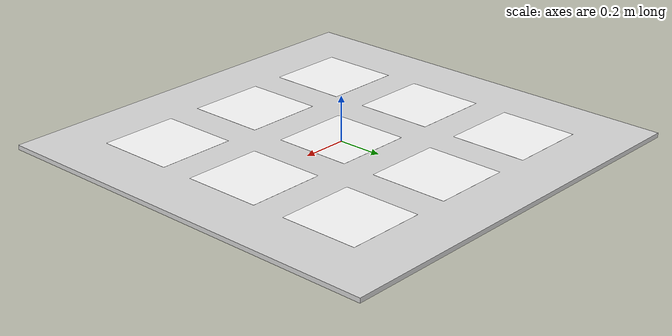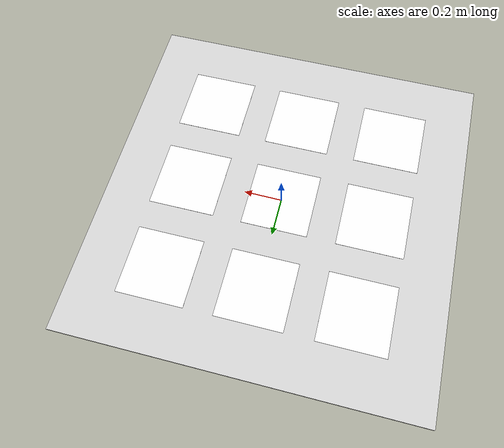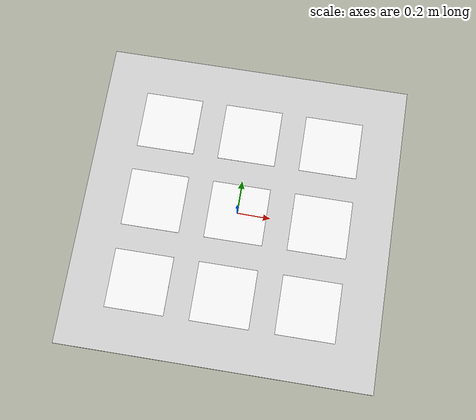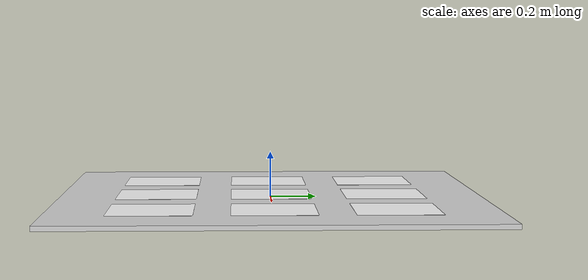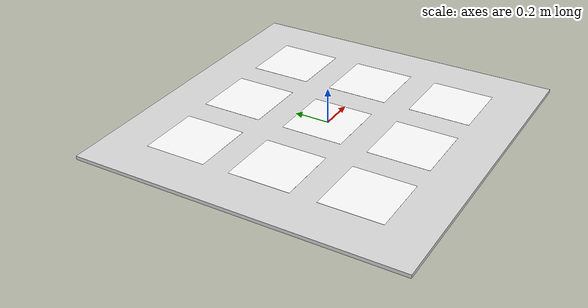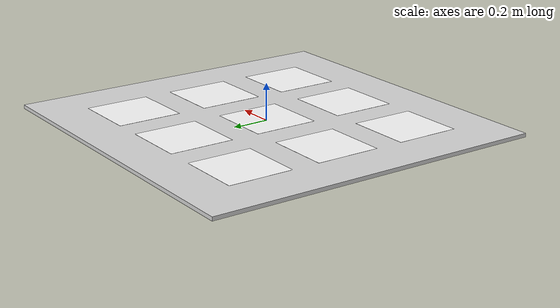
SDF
<?xml version="1.0"?>
<sdf version="1.9">
  <model name="aruco_pad">
    <static>true</static>
    <link name="link">
      <!-- 1.85 m x 1.85 m board -->
      <visual name="board">
        <geometry>
          <box>
            <size>1.85 1.85 0.02</size>
          </box>
        </geometry>
        <material>
          <ambient>0.85 0.85 0.85 1</ambient>
          <diffuse>0.85 0.85 0.85 1</diffuse>
        </material>
      </visual>
      <collision name="collision">
        <geometry>
          <box>
            <size>1.85 1.85 0.02</size>
          </box>
        </geometry>
      </collision>

      <!-- 3 x 3 grid of 5x5_1000 markers (0.35 m each) -->
      <visual name="marker_0">
        <pose>-0.5 0.5 0.011 0 0 0</pose>
        <geometry><plane><normal>0 0 1</normal><size>0.35 0.35</size></plane></geometry>
        <material>
          <ambient>1 1 1 1</ambient><diffuse>1 1 1 1</diffuse>
          <pbr><metal><albedo_map>model://aruco_pad/materials/textures/5x5_1000-0.png</albedo_map></metal></pbr>
        </material>
      </visual>
      <visual name="marker_1">
        <pose>0 0.5 0.011 0 0 0</pose>
        <geometry><plane><normal>0 0 1</normal><size>0.35 0.35</size></plane></geometry>
        <material>
          <ambient>1 1 1 1</ambient><diffuse>1 1 1 1</diffuse>
          <pbr><metal><albedo_map>model://aruco_pad/materials/textures/5x5_1000-1.png</albedo_map></metal></pbr>
        </material>
      </visual>
      <visual name="marker_2">
        <pose>0.5 0.5 0.011 0 0 0</pose>
        <geometry><plane><normal>0 0 1</normal><size>0.35 0.35</size></plane></geometry>
        <material>
          <ambient>1 1 1 1</ambient><diffuse>1 1 1 1</diffuse>
          <pbr><metal><albedo_map>model://aruco_pad/materials/textures/5x5_1000-2.png</albedo_map></metal></pbr>
        </material>
      </visual>
      <visual name="marker_3">
        <pose>-0.5 0 0.011 0 0 0</pose>
        <geometry><plane><normal>0 0 1</normal><size>0.35 0.35</size></plane></geometry>
        <material>
          <ambient>1 1 1 1</ambient><diffuse>1 1 1 1</diffuse>
          <pbr><metal><albedo_map>model://aruco_pad/materials/textures/5x5_1000-3.png</albedo_map></metal></pbr>
        </material>
      </visual>
      <visual name="marker_4">
        <pose>0 0 0.011 0 0 0</pose>
        <geometry><plane><normal>0 0 1</normal><size>0.35 0.35</size></plane></geometry>
        <material>
          <ambient>1 1 1 1</ambient><diffuse>1 1 1 1</diffuse>
          <pbr><metal><albedo_map>model://aruco_pad/materials/textures/5x5_1000-4.png</albedo_map></metal></pbr>
        </material>
      </visual>
      <visual name="marker_5">
        <pose>0.5 0 0.011 0 0 0</pose>
        <geometry><plane><normal>0 0 1</normal><size>0.35 0.35</size></plane></geometry>
        <material>
          <ambient>1 1 1 1</ambient><diffuse>1 1 1 1</diffuse>
          <pbr><metal><albedo_map>model://aruco_pad/materials/textures/5x5_1000-5.png</albedo_map></metal></pbr>
        </material>
      </visual>
      <visual name="marker_6">
        <pose>-0.5 -0.5 0.011 0 0 0</pose>
        <geometry><plane><normal>0 0 1</normal><size>0.35 0.35</size></plane></geometry>
        <material>
          <ambient>1 1 1 1</ambient><diffuse>1 1 1 1</diffuse>
          <pbr><metal><albedo_map>model://aruco_pad/materials/textures/5x5_1000-6.png</albedo_map></metal></pbr>
        </material>
      </visual>
      <visual name="marker_7">
        <pose>0 -0.5 0.011 0 0 0</pose>
        <geometry><plane><normal>0 0 1</normal><size>0.35 0.35</size></plane></geometry>
        <material>
          <ambient>1 1 1 1</ambient><diffuse>1 1 1 1</diffuse>
          <pbr><metal><albedo_map>model://aruco_pad/materials/textures/5x5_1000-7.png</albedo_map></metal></pbr>
        </material>
      </visual>
      <visual name="marker_8">
        <pose>0.5 -0.5 0.011 0 0 0</pose>
        <geometry><plane><normal>0 0 1</normal><size>0.35 0.35</size></plane></geometry>
        <material>
          <ambient>1 1 1 1</ambient><diffuse>1 1 1 1</diffuse>
          <pbr><metal><albedo_map>model://aruco_pad/materials/textures/5x5_1000-8.png</albedo_map></metal></pbr>
        </material>
      </visual>
    </link>
  </model>
</sdf>
